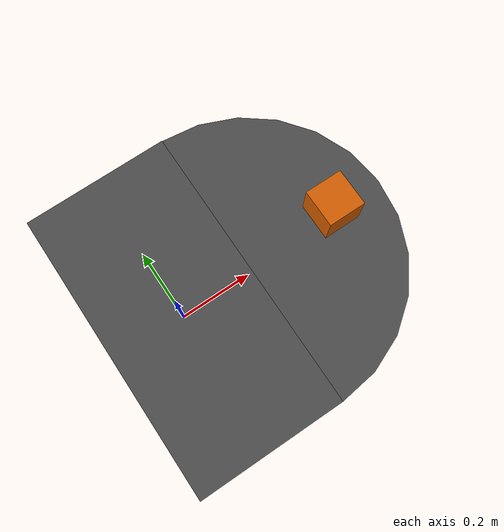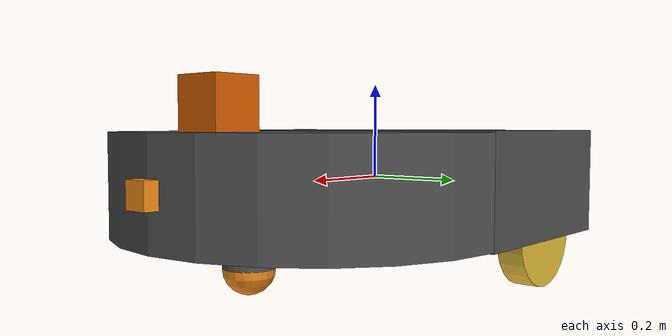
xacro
<?xml version='1.0'?>

<robot name="my_robot" xmlns:xacro="http://www.ros.org/wiki/xacro">

  <xacro:include filename="$(find my_robot)/urdf/my_robot.gazebo" />
  <link name="robot_footprint"></link>

  <joint name="robot_footprint_joint" type="fixed">
    <origin xyz="0 0 0" rpy="0 0 0" />
    <parent link="robot_footprint"/>
    <child link="chassis" />
  </joint>

  <link name='chassis'>
    <pose>0 0 0.2 0 0 0</pose>

    <inertial>
      <mass value="15.0"/>
      <origin xyz="0.0 0 0" rpy=" 0 0 0"/>
      <inertia
          ixx="0.1" ixy="0" ixz="0"
          iyy="0.1" iyz="0"
          izz="0.1"
      />
    </inertial>

    <collision name='collision'>
      <origin xyz="0 0 0" rpy=" 0 0 0"/>
      <geometry>
        <box size=".4 .8 .205"/>
      </geometry>
    </collision>

    <visual name='chassis_visual'>
      <origin xyz="0 0 0" rpy=" 0 0 0"/>
      <geometry>
        <box size=".4 .8 .205"/>
      </geometry>
    </visual>

    <collision name='front_chassis_collision'>
      <origin xyz="0.2 0 0" rpy=" 0 0 0"/>
      <geometry>
        <cylinder radius=".4" length="0.2"/>
      </geometry>
    </collision>

    <visual name='front_chassis_visual'>
      <origin xyz="0.2 0 0" rpy=" 0 0 0"/>
      <geometry>
        <cylinder radius=".4" length="0.2"/>
      </geometry>
    </visual>

    <collision name='caster_collision'>
      <origin xyz="0.38 0 -0.15" rpy=" 0 0 0"/>
      <geometry>
        <sphere radius="0.0499"/>
      </geometry>
    </collision>

    <visual name='caster_visual'>
      <origin xyz="0.38 0 -0.15" rpy=" 0 0 0"/>
      <geometry>
        <sphere radius="0.05"/>
      </geometry>
      <material name="orange"/>
    </visual>

    <collision name='caster_link_collision'>
      <origin xyz="0.38 0 -0.125" rpy=" 0 0 0"/>
      <geometry>
        <cylinder radius="0.05" length="0.05"/>
      </geometry>
    </collision>

    <visual name='caster_link_visual'>
      <origin xyz="0.38 0 -0.125" rpy=" 0 0 0"/>
      <geometry>
        <cylinder radius="0.05" length="0.05"/>
      </geometry>
    </visual>

  </link>

<link name='left_wheel'>

  <inertial>
    <mass value="5.0"/>
    <origin xyz="0.0 0 0" rpy=" 0 1.5707 1.5707"/>
    <inertia
        ixx="0.1" ixy="0" ixz="0"
        iyy="0.1" iyz="0"
        izz="0.1"
    />
  </inertial>

  <collision name='left_wheel_visual'>
    <origin xyz="0 0 0" rpy=" 0 1.5707 1.5707"/>
    <geometry>
      <cylinder radius="0.1" length="0.05"/>
    </geometry>
  </collision>

  <visual name='left_wheel_visual'>
    <origin xyz="0 0 0" rpy=" 0 1.5707 1.5707"/>
    <geometry>
      <cylinder radius="0.1" length="0.05"/>
    </geometry>
  </visual>
</link>

<link name='right_wheel'>

  <inertial>
    <mass value="5.0"/>
    <origin xyz="0.0 0 0" rpy=" 0 1.5707 1.5707"/>
    <inertia
        ixx="0.1" ixy="0" ixz="0"
        iyy="0.1" iyz="0"
        izz="0.1"
    />
  </inertial>

  <collision name='right_wheel_visual'>
    <origin xyz="0 0 0" rpy=" 0 1.5707 1.5707"/>
    <geometry>
      <cylinder radius="0.1" length="0.05"/>
    </geometry>
  </collision>

  <visual name='right_wheel_visual'>
    <origin xyz="0 0 0" rpy=" 0 1.5707 1.5707"/>
    <geometry>
      <cylinder radius="0.1" length="0.05"/>
    </geometry>
  </visual>
</link>

<link name='camera'>
  <pose>0 0 0 0 0 0</pose>

  <inertial>
    <mass value="0.1"/>
    <origin xyz="0 0 0" rpy="0 0 0"/>
    <inertia
        ixx="1e-6" ixy="0" ixz="0"
        iyy="1e-6" iyz="0"
        izz="1e-6"
    />
  </inertial>

  <collision name='camera'>
    <origin xyz="0 0 0" rpy=" 0 0 0"/>
    <geometry>
      <box size="0.05 0.05 0.05"/>
    </geometry>
  </collision>

  <visual name='camera'>
    <origin xyz="0 0 0" rpy=" 0 0 0"/>
    <geometry>
      <box size="0.05 0.05 0.05"/>
    </geometry>
  </visual>
</link>

<link name='hokuyo'>
  <pose>0 0 0 0 0 0</pose>

  <inertial>
    <mass value="1e-5"/>
    <origin xyz="0 0 0" rpy="0 0 0"/>
    <inertia
        ixx="1e-6" ixy="0" ixz="0"
        iyy="1e-6" iyz="0"
        izz="1e-6"
    />
  </inertial>

  <collision name='hokuyo'>
    <origin xyz="0 0 0" rpy=" 0 0 0"/>
    <geometry>
      <box size="0.1 0.1 0.1"/>
    </geometry>
  </collision>

  <visual name='package://my_robot/meshes/hokuyo.dae'>
    <origin xyz="0 0 0" rpy=" 0 0 0"/>
    <geometry>
      <box size="0.1 0.1 0.1"/>
    </geometry>
  </visual>
</link>

<joint type="continuous" name="left_wheel_hinge">
  <origin xyz="-0.05 0.35 -0.1" rpy="0 0 0"/>
  <child link="left_wheel"/>
  <parent link="chassis"/>
  <axis xyz="0 1 0" rpy="0 0 0"/>
  <limit effort="10000" velocity="1000"/>
  <dynamics damping="1.0" friction="1.0"/>
</joint>

<joint type="continuous" name="right_wheel_hinge">
  <origin xyz="-0.05 -0.35 -0.1" rpy="0 0 0"/>
  <child link="right_wheel"/>
  <parent link="chassis"/>
  <axis xyz="0 1 0" rpy="0 0 0"/>
  <limit effort="10000" velocity="1000"/>
  <dynamics damping="1.0" friction="1.0"/>
</joint>

<joint type="fixed" name="camera_joint">
  <origin xyz="0.6 0 0" rpy="0 0 0"/>
  <child link="camera"/>
  <parent link="chassis"/>
  <axis xyz="0 1 0" rpy="0 0 0"/>
</joint>

<joint type="fixed" name="hokuyo_joint">
  <origin xyz="0.45 0 0.15" rpy="0 0 0"/>
  <child link="hokuyo"/>
  <parent link="chassis"/>
  <axis xyz="0 1 0" rpy="0 0 0"/>
</joint>

<gazebo reference="left_wheel">
    <material>Gazebo/Gold</material>
</gazebo>

<gazebo reference="right_wheel">
    <material>Gazebo/Gold</material>
</gazebo>

<gazebo reference="chassis">
    <material>Gazebo/DarkGrey</material>
</gazebo>

<gazebo reference="front_caster_visual">
    <material>Gazebo/Blue</material>
</gazebo>

<gazebo reference="package://my_robot/meshes/hokuyo.dae">
    <material>Gazebo/Black</material>
</gazebo>

<gazebo reference="camera">
    <material>Gazebo/Orange</material>
</gazebo>

</robot>
